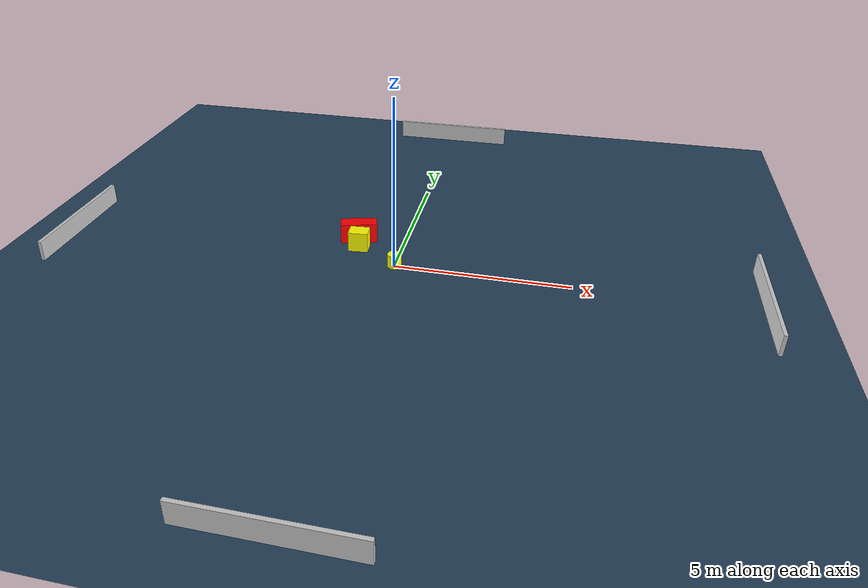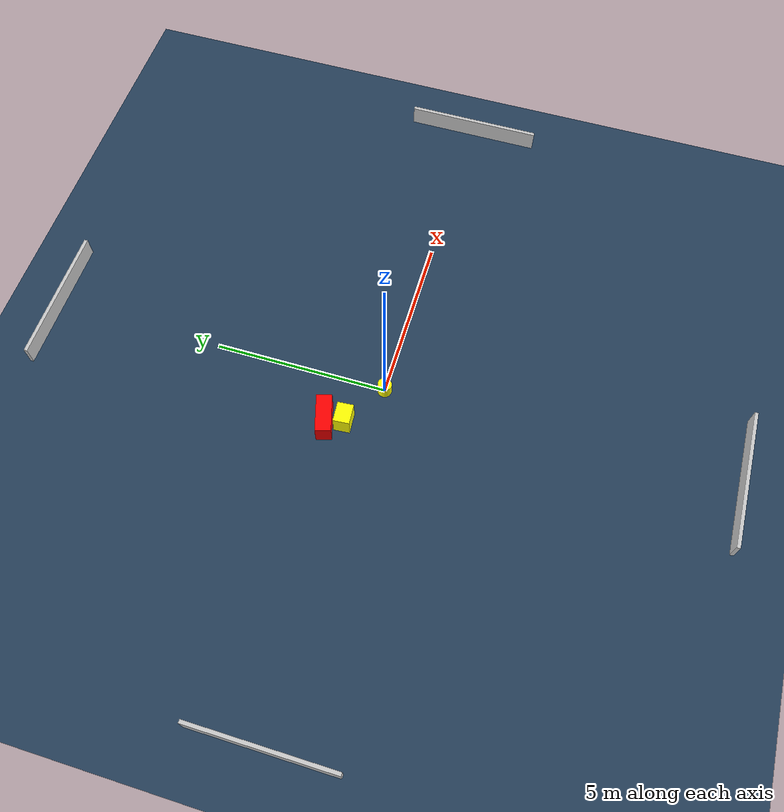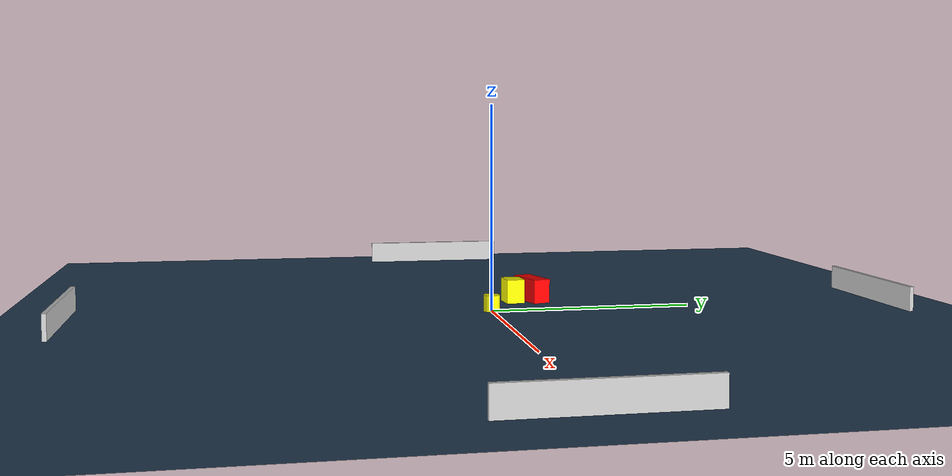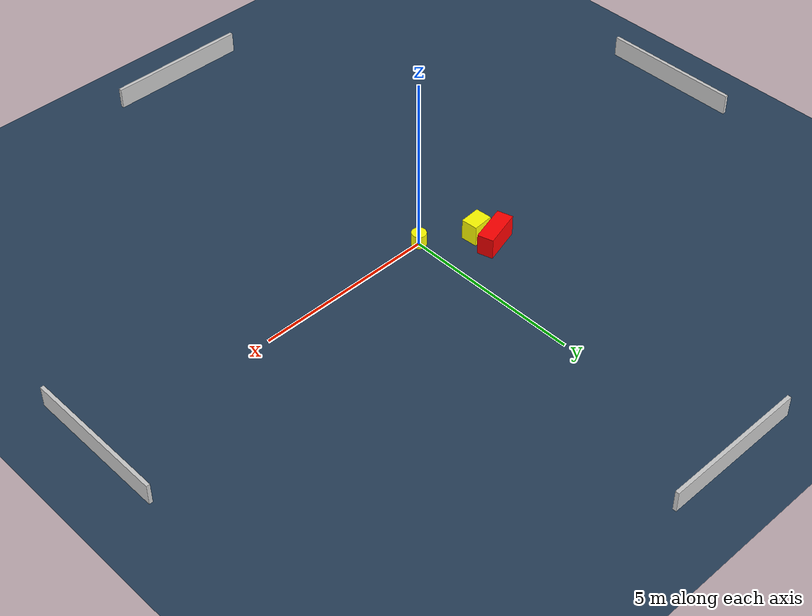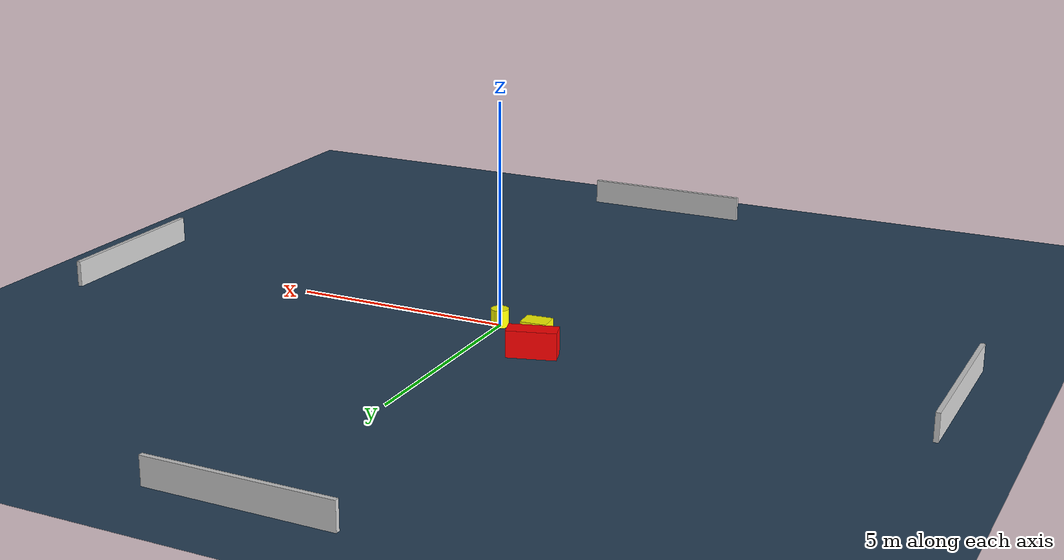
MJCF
<?xml version="1.0" ?>
<mujoco model="generated_environment">
  <option timestep="0.01" integrator="RK4" cone="elliptic"/>
  <default>
    <geom density="1"/>
  </default>
  <asset>
    <texture builtin="gradient" height="3072" name="skybox" rgb1="0.3 0.5 0.7" rgb2="0 0 0" type="skybox" width="512"/>
    <texture builtin="checker" height="300" name="groundplane" rgb1="0.2 0.3 0.4" rgb2="0.1 0.2 0.3" type="2d" width="300"/>
    <material name="groundplane" reflectance="0.2" texrepeat="5 5" texture="groundplane"/>
  </asset>
  <worldbody>
    <light dir="0 0 -1" directional="true" pos="0 0 1.5"/>
    <geom condim="3" friction="0.5 0.005 0.001" material="groundplane" name="floor" pos="0 0 0" size="0 0 0.05" type="plane"/>
    <body name="walls">
      <geom name="wall_1" condim="4" pos="-10.0 0.0 0.3" rgba="0.800000011920929 0.800000011920929 0.800000011920929 1.0" size="0.05 2.0 0.3" type="box"/>
      <geom name="wall_2" condim="4" pos="10.0 0.0 0.3" rgba="0.800000011920929 0.800000011920929 0.800000011920929 1.0" size="0.05 2.0 0.3" type="box"/>
      <geom name="wall_3" condim="4" pos="0.0 -10.0 0.3" rgba="0.800000011920929 0.800000011920929 0.800000011920929 1.0" size="2.0 0.05 0.3" type="box"/>
      <geom name="wall_4" condim="4" pos="0.0 10.0 0.3" rgba="0.800000011920929 0.800000011920929 0.800000011920929 1.0" size="2.0 0.05 0.3" type="box"/>
    </body>
    <body name="robot">
      <joint name="joint_x" type="slide" pos="0 0 0" axis="1 0 0"/>
      <joint name="joint_y" type="slide" pos="0 0 0" axis="0 1 0"/>
      <geom name="robot" type="cylinder" pos="0.0 0.0 0.2" size="0.2 0.2 0.0" mass="5.0" friction="1.0 0.005 0.0001" condim="4" rgba="1.0 1.0 0.0 1.0"/>
    </body>
    <body name="obstacle_1_movable">
      <geom name="obstacle_1_movable" condim="4" pos="-1.2641153974340829 0.7983926835342355 0.3" euler="0 0 184.42543026878946" friction="0.0 0.005 0.001" rgba="1.0 1.0 0.0 1.0" size="0.2895313089292182 0.22976895581069412 0.3" type="box" mass="0.1"/>
      <joint type="free"/>
    </body>
    <body name="obstacle_2_static">
      <geom name="obstacle_2_static" condim="4" pos="-1.4139730728502933 1.319777105414022 0.3" euler="0 0 16.238393124382313" friction="0.0 0.005 0.001" rgba="1.0 0.0 0.0 1.0" size="0.542969923107521 0.22103991084563468 0.3" type="box"/>
    </body>
  </worldbody>
  <actuator>
    <motor name="actuator_x" joint="joint_x" gear="1" ctrlrange="-1 1"/>
    <motor name="actuator_y" joint="joint_y" gear="1" ctrlrange="-1 1"/>
  </actuator>
</mujoco>
